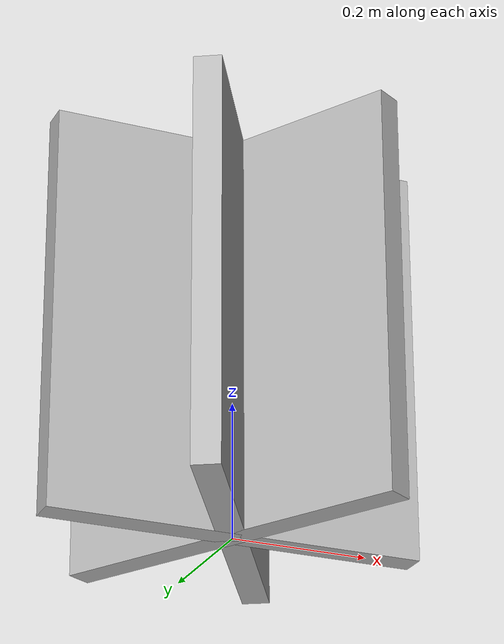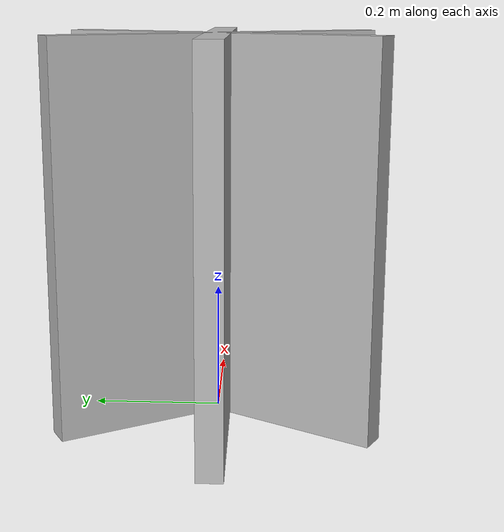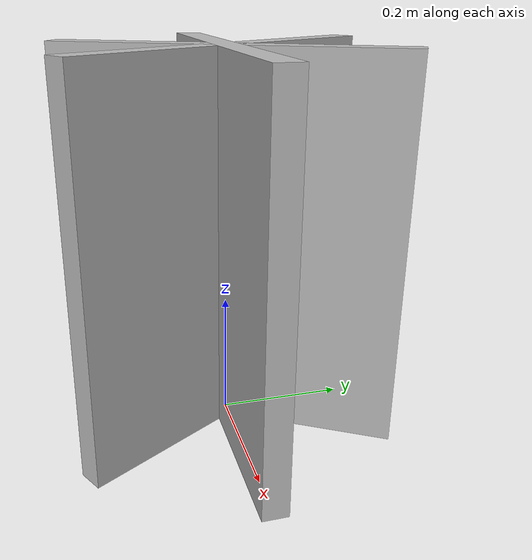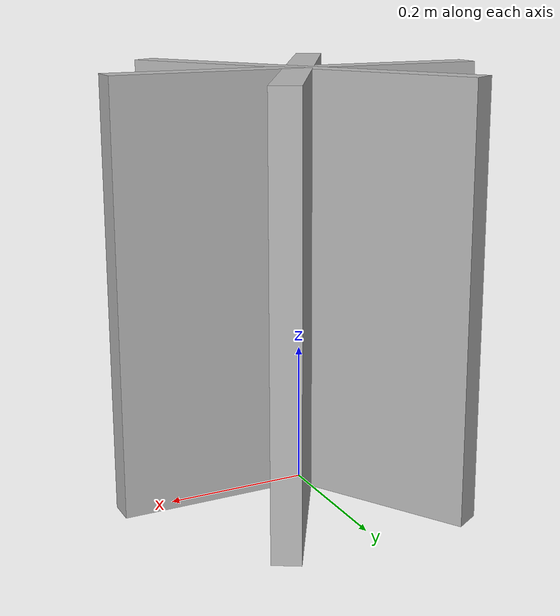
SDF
<?xml version="1.0" ?>
<sdf version="1.9">
  <model name="rice_clump">
    <static>true</static>
    <link name="body">
      <visual name="blade_1">
        <pose>0 0 0.30 0 0 0</pose>
        <geometry><box><size>0.55 0.04 0.60</size></box></geometry>
        <material><double_sided>true</double_sided>
          <pbr><metal><albedo_map>model://rice_clump/materials/textures/rice_blade_albedo.png</albedo_map></metal></pbr>
        </material>
      </visual>
      <visual name="blade_2">
        <pose>0 0 0.30 0 0 1.0472</pose>
        <geometry><box><size>0.55 0.04 0.60</size></box></geometry>
        <material><double_sided>true</double_sided>
          <pbr><metal><albedo_map>model://rice_clump/materials/textures/rice_blade_albedo.png</albedo_map></metal></pbr>
        </material>
      </visual>
      <visual name="blade_3">
        <pose>0 0 0.30 0 0 2.0944</pose>
        <geometry><box><size>0.55 0.04 0.60</size></box></geometry>
        <material><double_sided>true</double_sided>
          <pbr><metal><albedo_map>model://rice_clump/materials/textures/rice_blade_albedo.png</albedo_map></metal></pbr>
        </material>
      </visual>
    </link>
  </model>
</sdf>
